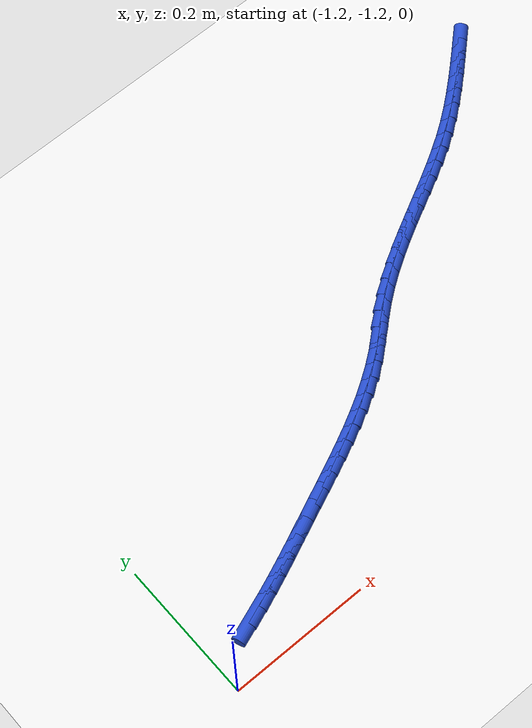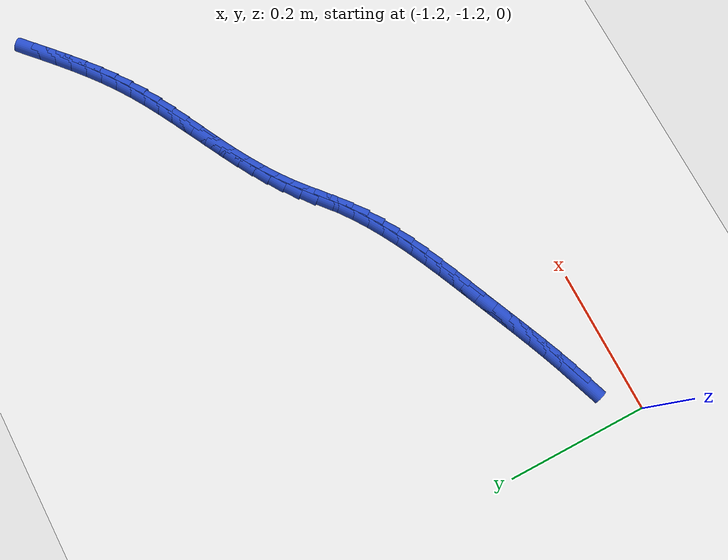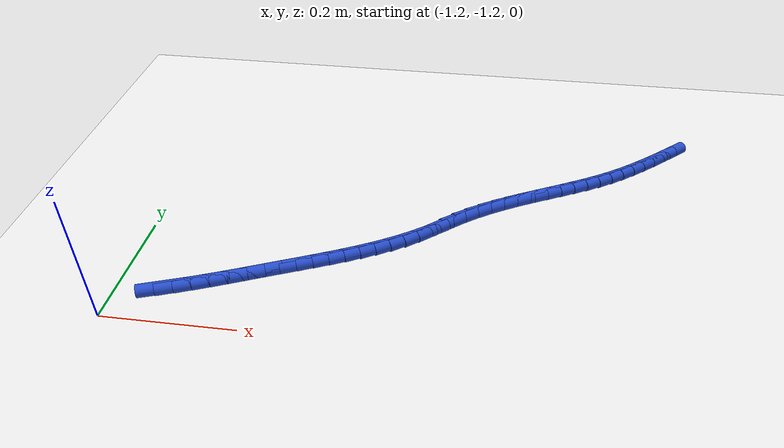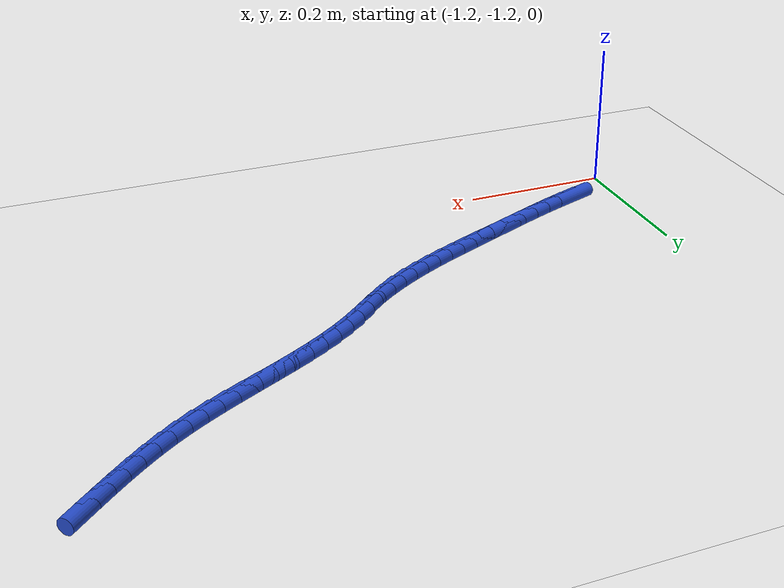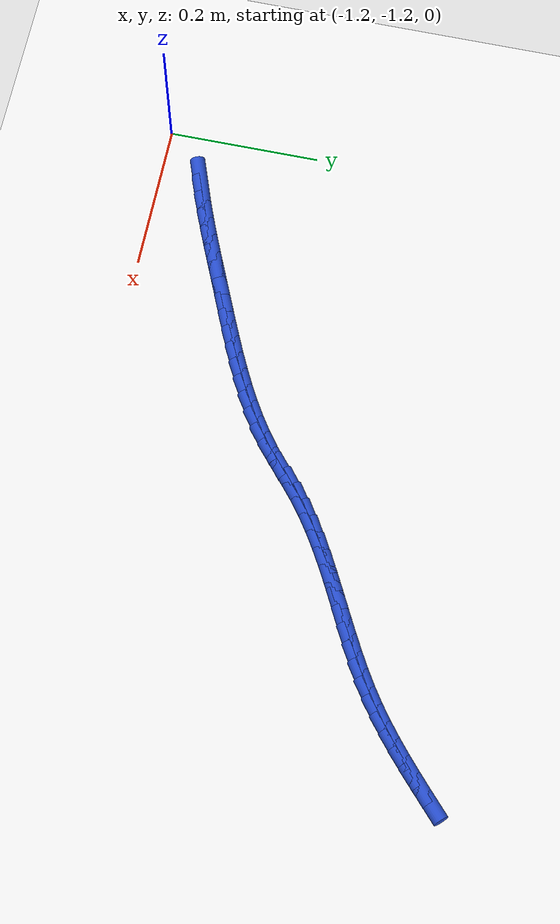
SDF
<sdf version="1.6">
 <world name="default">
  <model name="ground_plane">
   <static>1</static>
   <link name="link">
    <collision name="collision">
     <geometry><plane><normal>0 0 1</normal><size>100 100</size></plane></geometry>
     <surface><friction><ode><mu>100</mu><mu2>50</mu2></ode></friction></surface>
    </collision>
    <visual name="visual">
     <cast_shadows>0</cast_shadows>
     <geometry><plane><normal>0 0 1</normal><size>100 100</size></plane></geometry>
     <material>
      <script><uri>file://media/materials/scripts/gazebo.material</uri><name>Gazebo/WhiteGlow</name></script>
     </material>
    </visual>
   </link>
  </model>
  <model name="line">
   <link name="link_219">
    <pose>-1.1239902223441733 -1.1418617949663097 0.01 0 1.57 0.3468682004314228</pose>
    <collision name="collision">
     <geometry><cylinder><radius>0.01</radius><length>0.08</length></cylinder></geometry>
    </collision>
    <visual name="visual">
     <material>
      <script><name>Gazebo/Blue</name><uri>file://media/materials/scripts/gazebo.material</uri></script>
     </material>
     <geometry><cylinder><radius>0.01</radius><length>0.08</length></cylinder></geometry>
    </visual>
   </link>
   <link name="link_220">
    <pose>-1.100171742155904 -1.133251808878443 0.01 0 1.57 0.37110793895502503</pose>
    <collision name="collision">
     <geometry><cylinder><radius>0.01</radius><length>0.08</length></cylinder></geometry>
    </collision>
    <visual name="visual">
     <material>
      <script><name>Gazebo/Blue</name><uri>file://media/materials/scripts/gazebo.material</uri></script>
     </material>
     <geometry><cylinder><radius>0.01</radius><length>0.08</length></cylinder></geometry>
    </visual>
   </link>
   <link name="link_221">
    <pose>-1.0763964643517092 -1.1239999370963216 0.01 0 1.57 0.3897534535412973</pose>
    <collision name="collision">
     <geometry><cylinder><radius>0.01</radius><length>0.08</length></cylinder></geometry>
    </collision>
    <visual name="visual">
     <material>
      <script><name>Gazebo/Blue</name><uri>file://media/materials/scripts/gazebo.material</uri></script>
     </material>
     <geometry><cylinder><radius>0.01</radius><length>0.08</length></cylinder></geometry>
    </visual>
   </link>
   <link name="link_222">
    <pose>-1.0527073982210173 -1.1142692566308194 0.01 0 1.57 0.40307360979917206</pose>
    <collision name="collision">
     <geometry><cylinder><radius>0.01</radius><length>0.08</length></cylinder></geometry>
    </collision>
    <visual name="visual">
     <material>
      <script><name>Gazebo/Blue</name><uri>file://media/materials/scripts/gazebo.material</uri></script>
     </material>
     <geometry><cylinder><radius>0.01</radius><length>0.08</length></cylinder></geometry>
    </visual>
   </link>
   <link name="link_223">
    <pose>-1.0291475530532577 -1.1042228444928108 0.01 0 1.57 0.4112249816998656</pose>
    <collision name="collision">
     <geometry><cylinder><radius>0.01</radius><length>0.08</length></cylinder></geometry>
    </collision>
    <visual name="visual">
     <material>
      <script><name>Gazebo/Blue</name><uri>file://media/materials/scripts/gazebo.material</uri></script>
     </material>
     <geometry><cylinder><radius>0.01</radius><length>0.08</length></cylinder></geometry>
    </visual>
   </link>
   <link name="link_224">
    <pose>-1.0057599381378588 -1.094023777693169 0.01 0 1.57 0.4142465015903636</pose>
    <collision name="collision">
     <geometry><cylinder><radius>0.01</radius><length>0.08</length></cylinder></geometry>
    </collision>
    <visual name="visual">
     <material>
      <script><name>Gazebo/Blue</name><uri>file://media/materials/scripts/gazebo.material</uri></script>
     </material>
     <geometry><cylinder><radius>0.01</radius><length>0.08</length></cylinder></geometry>
    </visual>
   </link>
   <link name="link_225">
    <pose>-0.9825875627642497 -1.083835133242768 0.01 0 1.57 0.4128061277753113</pose>
    <collision name="collision">
     <geometry><cylinder><radius>0.01</radius><length>0.08</length></cylinder></geometry>
    </collision>
    <visual name="visual">
     <material>
      <script><name>Gazebo/Blue</name><uri>file://media/materials/scripts/gazebo.material</uri></script>
     </material>
     <geometry><cylinder><radius>0.01</radius><length>0.08</length></cylinder></geometry>
    </visual>
   </link>
   <link name="link_226">
    <pose>-0.9596730903806677 -1.0737992472950486 0.01 0 1.57 0.4135303577836359</pose>
    <collision name="collision">
     <geometry><cylinder><radius>0.01</radius><length>0.08</length></cylinder></geometry>
    </collision>
    <visual name="visual">
     <material>
      <script><name>Gazebo/Blue</name><uri>file://media/materials/scripts/gazebo.material</uri></script>
     </material>
     <geometry><cylinder><radius>0.01</radius><length>0.08</length></cylinder></geometry>
    </visual>
   </link>
   <link name="link_227">
    <pose>-0.9370561108558151 -1.0638741266736842 0.01 0 1.57 0.4200968182596299</pose>
    <collision name="collision">
     <geometry><cylinder><radius>0.01</radius><length>0.08</length></cylinder></geometry>
    </collision>
    <visual name="visual">
     <material>
      <script><name>Gazebo/Blue</name><uri>file://media/materials/scripts/gazebo.material</uri></script>
     </material>
     <geometry><cylinder><radius>0.01</radius><length>0.08</length></cylinder></geometry>
    </visual>
   </link>
   <link name="link_228">
    <pose>-0.914774604174402 -1.0539212299160077 0.01 0 1.57 0.43273308988524256</pose>
    <collision name="collision">
     <geometry><cylinder><radius>0.01</radius><length>0.08</length></cylinder></geometry>
    </collision>
    <visual name="visual">
     <material>
      <script><name>Gazebo/Blue</name><uri>file://media/materials/scripts/gazebo.material</uri></script>
     </material>
     <geometry><cylinder><radius>0.01</radius><length>0.08</length></cylinder></geometry>
    </visual>
   </link>
   <link name="link_229">
    <pose>-0.8928665361791358 -1.043801167432288 0.01 0 1.57 0.45160347907450105</pose>
    <collision name="collision">
     <geometry><cylinder><radius>0.01</radius><length>0.08</length></cylinder></geometry>
    </collision>
    <visual name="visual">
     <material>
      <script><name>Gazebo/Blue</name><uri>file://media/materials/scripts/gazebo.material</uri></script>
     </material>
     <geometry><cylinder><radius>0.01</radius><length>0.08</length></cylinder></geometry>
    </visual>
   </link>
   <link name="link_230">
    <pose>-0.871369872712724 -1.033374549632794 0.01 0 1.57 0.47682166043330415</pose>
    <collision name="collision">
     <geometry><cylinder><radius>0.01</radius><length>0.08</length></cylinder></geometry>
    </collision>
    <visual name="visual">
     <material>
      <script><name>Gazebo/Blue</name><uri>file://media/materials/scripts/gazebo.material</uri></script>
     </material>
     <geometry><cylinder><radius>0.01</radius><length>0.08</length></cylinder></geometry>
    </visual>
   </link>
   <link name="link_231">
    <pose>-0.8503225796178735 -1.0225019869277947 0.01 0 1.57 0.5084243468672923</pose>
    <collision name="collision">
     <geometry><cylinder><radius>0.01</radius><length>0.08</length></cylinder></geometry>
    </collision>
    <visual name="visual">
     <material>
      <script><name>Gazebo/Blue</name><uri>file://media/materials/scripts/gazebo.material</uri></script>
     </material>
     <geometry><cylinder><radius>0.01</radius><length>0.08</length></cylinder></geometry>
    </visual>
   </link>
   <link name="link_232">
    <pose>-0.8297626227372915 -1.0110440897275592 0.01 0 1.57 0.546337623251818</pose>
    <collision name="collision">
     <geometry><cylinder><radius>0.01</radius><length>0.08</length></cylinder></geometry>
    </collision>
    <visual name="visual">
     <material>
      <script><name>Gazebo/Blue</name><uri>file://media/materials/scripts/gazebo.material</uri></script>
     </material>
     <geometry><cylinder><radius>0.01</radius><length>0.08</length></cylinder></geometry>
    </visual>
   </link>
   <link name="link_233">
    <pose>-0.8097279679136863 -0.998861468442357 0.01 0 1.57 0.590338850239696</pose>
    <collision name="collision">
     <geometry><cylinder><radius>0.01</radius><length>0.08</length></cylinder></geometry>
    </collision>
    <visual name="visual">
     <material>
      <script><name>Gazebo/Blue</name><uri>file://media/materials/scripts/gazebo.material</uri></script>
     </material>
     <geometry><cylinder><radius>0.01</radius><length>0.08</length></cylinder></geometry>
    </visual>
   </link>
   <link name="link_234">
    <pose>-0.7902565809897634 -0.9858147334824554 0.01 0 1.57 0.6400198508491908</pose>
    <collision name="collision">
     <geometry><cylinder><radius>0.01</radius><length>0.08</length></cylinder></geometry>
    </collision>
    <visual name="visual">
     <material>
      <script><name>Gazebo/Blue</name><uri>file://media/materials/scripts/gazebo.material</uri></script>
     </material>
     <geometry><cylinder><radius>0.01</radius><length>0.08</length></cylinder></geometry>
    </visual>
   </link>
   <link name="link_235">
    <pose>-0.7713864278082309 -0.9717644952581249 0.01 0 1.57 0.6919272058898125</pose>
    <collision name="collision">
     <geometry><cylinder><radius>0.01</radius><length>0.08</length></cylinder></geometry>
    </collision>
    <visual name="visual">
     <material>
      <script><name>Gazebo/Blue</name><uri>file://media/materials/scripts/gazebo.material</uri></script>
     </material>
     <geometry><cylinder><radius>0.01</radius><length>0.08</length></cylinder></geometry>
    </visual>
   </link>
   <link name="link_236">
    <pose>-0.7531212559562316 -0.9566303163265089 0.01 0 1.57 0.7172323943976475</pose>
    <collision name="collision">
     <geometry><cylinder><radius>0.01</radius><length>0.08</length></cylinder></geometry>
    </collision>
    <visual name="visual">
     <material>
      <script><name>Gazebo/Blue</name><uri>file://media/materials/scripts/gazebo.material</uri></script>
     </material>
     <geometry><cylinder><radius>0.01</radius><length>0.08</length></cylinder></geometry>
    </visual>
   </link>
   <link name="link_237">
    <pose>-0.735118415648917 -0.9409285421144176 0.01 0 1.57 0.7001756571374129</pose>
    <collision name="collision">
     <geometry><cylinder><radius>0.01</radius><length>0.08</length></cylinder></geometry>
    </collision>
    <visual name="visual">
     <material>
      <script><name>Gazebo/Blue</name><uri>file://media/materials/scripts/gazebo.material</uri></script>
     </material>
     <geometry><cylinder><radius>0.01</radius><length>0.08</length></cylinder></geometry>
    </visual>
   </link>
   <link name="link_238">
    <pose>-0.7168339802133258 -0.9255222833949719 0.01 0 1.57 0.6493386848524372</pose>
    <collision name="collision">
     <geometry><cylinder><radius>0.01</radius><length>0.08</length></cylinder></geometry>
    </collision>
    <visual name="visual">
     <material>
      <script><name>Gazebo/Blue</name><uri>file://media/materials/scripts/gazebo.material</uri></script>
     </material>
     <geometry><cylinder><radius>0.01</radius><length>0.08</length></cylinder></geometry>
    </visual>
   </link>
   <link name="link_239">
    <pose>-0.6978369837210652 -0.9111004964281744 0.01 0 1.57 0.5989765616737167</pose>
    <collision name="collision">
     <geometry><cylinder><radius>0.01</radius><length>0.08</length></cylinder></geometry>
    </collision>
    <visual name="visual">
     <material>
      <script><name>Gazebo/Blue</name><uri>file://media/materials/scripts/gazebo.material</uri></script>
     </material>
     <geometry><cylinder><radius>0.01</radius><length>0.08</length></cylinder></geometry>
    </visual>
   </link>
   <link name="link_240">
    <pose>-0.6781453647370274 -0.8976583000804683 0.01 0 1.57 0.557679616994059</pose>
    <collision name="collision">
     <geometry><cylinder><radius>0.01</radius><length>0.08</length></cylinder></geometry>
    </collision>
    <visual name="visual">
     <material>
      <script><name>Gazebo/Blue</name><uri>file://media/materials/scripts/gazebo.material</uri></script>
     </material>
     <geometry><cylinder><radius>0.01</radius><length>0.08</length></cylinder></geometry>
    </visual>
   </link>
   <link name="link_241">
    <pose>-0.6578861579896386 -0.8850221916097248 0.01 0 1.57 0.5254992966083294</pose>
    <collision name="collision">
     <geometry><cylinder><radius>0.01</radius><length>0.08</length></cylinder></geometry>
    </collision>
    <visual name="visual">
     <material>
      <script><name>Gazebo/Blue</name><uri>file://media/materials/scripts/gazebo.material</uri></script>
     </material>
     <geometry><cylinder><radius>0.01</radius><length>0.08</length></cylinder></geometry>
    </visual>
   </link>
   <link name="link_242">
    <pose>-0.6371863982073248 -0.8730186682738144 0.01 0 1.57 0.5023731551582654</pose>
    <collision name="collision">
     <geometry><cylinder><radius>0.01</radius><length>0.08</length></cylinder></geometry>
    </collision>
    <visual name="visual">
     <material>
      <script><name>Gazebo/Blue</name><uri>file://media/materials/scripts/gazebo.material</uri></script>
     </material>
     <geometry><cylinder><radius>0.01</radius><length>0.08</length></cylinder></geometry>
    </visual>
   </link>
   <link name="link_243">
    <pose>-0.6161731201185119 -0.861474227330608 0.01 0 1.57 0.4882047398874902</pose>
    <collision name="collision">
     <geometry><cylinder><radius>0.01</radius><length>0.08</length></cylinder></geometry>
    </collision>
    <visual name="visual">
     <material>
      <script><name>Gazebo/Blue</name><uri>file://media/materials/scripts/gazebo.material</uri></script>
     </material>
     <geometry><cylinder><radius>0.01</radius><length>0.08</length></cylinder></geometry>
    </visual>
   </link>
   <link name="link_244">
    <pose>-0.5949733584516259 -0.8502153660379763 0.01 0 1.57 0.482919503798041</pose>
    <collision name="collision">
     <geometry><cylinder><radius>0.01</radius><length>0.08</length></cylinder></geometry>
    </collision>
    <visual name="visual">
     <material>
      <script><name>Gazebo/Blue</name><uri>file://media/materials/scripts/gazebo.material</uri></script>
     </material>
     <geometry><cylinder><radius>0.01</radius><length>0.08</length></cylinder></geometry>
    </visual>
   </link>
   <link name="link_245">
    <pose>-0.5737141479350929 -0.8390685816537898 0.01 0 1.57 0.4864979405923275</pose>
    <collision name="collision">
     <geometry><cylinder><radius>0.01</radius><length>0.08</length></cylinder></geometry>
    </collision>
    <visual name="visual">
     <material>
      <script><name>Gazebo/Blue</name><uri>file://media/materials/scripts/gazebo.material</uri></script>
     </material>
     <geometry><cylinder><radius>0.01</radius><length>0.08</length></cylinder></geometry>
    </visual>
   </link>
   <link name="link_246">
    <pose>-0.552522523297339 -0.8278603714359198 0.01 0 1.57 0.49898794943651265</pose>
    <collision name="collision">
     <geometry><cylinder><radius>0.01</radius><length>0.08</length></cylinder></geometry>
    </collision>
    <visual name="visual">
     <material>
      <script><name>Gazebo/Blue</name><uri>file://media/materials/scripts/gazebo.material</uri></script>
     </material>
     <geometry><cylinder><radius>0.01</radius><length>0.08</length></cylinder></geometry>
    </visual>
   </link>
   <link name="link_247">
    <pose>-0.53152551926679 -0.8164172326422372 0.01 0 1.57 0.5204972349241718</pose>
    <collision name="collision">
     <geometry><cylinder><radius>0.01</radius><length>0.08</length></cylinder></geometry>
    </collision>
    <visual name="visual">
     <material>
      <script><name>Gazebo/Blue</name><uri>file://media/materials/scripts/gazebo.material</uri></script>
     </material>
     <geometry><cylinder><radius>0.01</radius><length>0.08</length></cylinder></geometry>
    </visual>
   </link>
   <link name="link_248">
    <pose>-0.5108501705718728 -0.8045656625306126 0.01 0 1.57 0.5511646192739761</pose>
    <collision name="collision">
     <geometry><cylinder><radius>0.01</radius><length>0.08</length></cylinder></geometry>
    </collision>
    <visual name="visual">
     <material>
      <script><name>Gazebo/Blue</name><uri>file://media/materials/scripts/gazebo.material</uri></script>
     </material>
     <geometry><cylinder><radius>0.01</radius><length>0.08</length></cylinder></geometry>
    </visual>
   </link>
   <link name="link_249">
    <pose>-0.49062351194101217 -0.7921321583589164 0.01 0 1.57 0.5910127670669799</pose>
    <collision name="collision">
     <geometry><cylinder><radius>0.01</radius><length>0.08</length></cylinder></geometry>
    </collision>
    <visual name="visual">
     <material>
      <script><name>Gazebo/Blue</name><uri>file://media/materials/scripts/gazebo.material</uri></script>
     </material>
     <geometry><cylinder><radius>0.01</radius><length>0.08</length></cylinder></geometry>
    </visual>
   </link>
   <link name="link_250">
    <pose>-0.47097117274673883 -0.7789449781704633 0.01 0 1.57 0.6341662803944735</pose>
    <collision name="collision">
     <geometry><cylinder><radius>0.01</radius><length>0.08</length></cylinder></geometry>
    </collision>
    <visual name="visual">
     <material>
      <script><name>Gazebo/Blue</name><uri>file://media/materials/scripts/gazebo.material</uri></script>
     </material>
     <geometry><cylinder><radius>0.01</radius><length>0.08</length></cylinder></geometry>
    </visual>
   </link>
   <link name="link_251">
    <pose>-0.45193186703168337 -0.7649412771556912 0.01 0 1.57 0.6712203649799513</pose>
    <collision name="collision">
     <geometry><cylinder><radius>0.01</radius><length>0.08</length></cylinder></geometry>
    </collision>
    <visual name="visual">
     <material>
      <script><name>Gazebo/Blue</name><uri>file://media/materials/scripts/gazebo.material</uri></script>
     </material>
     <geometry><cylinder><radius>0.01</radius><length>0.08</length></cylinder></geometry>
    </visual>
   </link>
   <link name="link_252">
    <pose>-0.43340807698631 -0.7502288968507628 0.01 0 1.57 0.7012254186750865</pose>
    <collision name="collision">
     <geometry><cylinder><radius>0.01</radius><length>0.08</length></cylinder></geometry>
    </collision>
    <visual name="visual">
     <material>
      <script><name>Gazebo/Blue</name><uri>file://media/materials/scripts/gazebo.material</uri></script>
     </material>
     <geometry><cylinder><radius>0.01</radius><length>0.08</length></cylinder></geometry>
    </visual>
   </link>
   <link name="link_253">
    <pose>-0.4152903872847997 -0.7349305853173375 0.01 0 1.57 0.7241479913741604</pose>
    <collision name="collision">
     <geometry><cylinder><radius>0.01</radius><length>0.08</length></cylinder></geometry>
    </collision>
    <visual name="visual">
     <material>
      <script><name>Gazebo/Blue</name><uri>file://media/materials/scripts/gazebo.material</uri></script>
     </material>
     <geometry><cylinder><radius>0.01</radius><length>0.08</length></cylinder></geometry>
    </visual>
   </link>
   <link name="link_254">
    <pose>-0.39746938260133313 -0.7191690906170741 0.01 0 1.57 0.7400232232454921</pose>
    <collision name="collision">
     <geometry><cylinder><radius>0.01</radius><length>0.08</length></cylinder></geometry>
    </collision>
    <visual name="visual">
     <material>
      <script><name>Gazebo/Blue</name><uri>file://media/materials/scripts/gazebo.material</uri></script>
     </material>
     <geometry><cylinder><radius>0.01</radius><length>0.08</length></cylinder></geometry>
    </visual>
   </link>
   <link name="link_255">
    <pose>-0.379835647610091 -0.7030671608116316 0.01 0 1.57 0.7489200162873549</pose>
    <collision name="collision">
     <geometry><cylinder><radius>0.01</radius><length>0.08</length></cylinder></geometry>
    </collision>
    <visual name="visual">
     <material>
      <script><name>Gazebo/Blue</name><uri>file://media/materials/scripts/gazebo.material</uri></script>
     </material>
     <geometry><cylinder><radius>0.01</radius><length>0.08</length></cylinder></geometry>
    </visual>
   </link>
  </model>
 </world>
</sdf>
